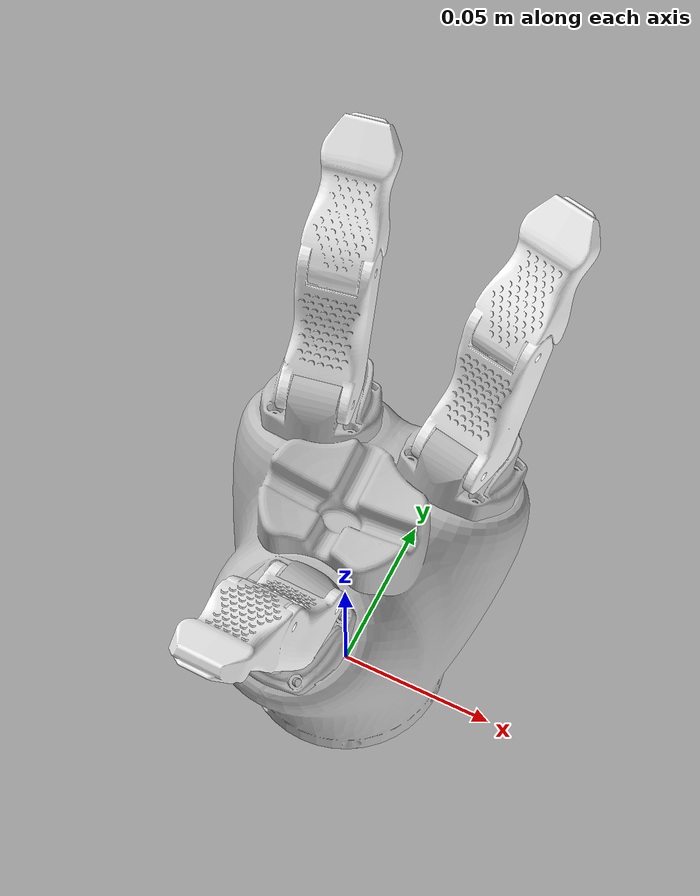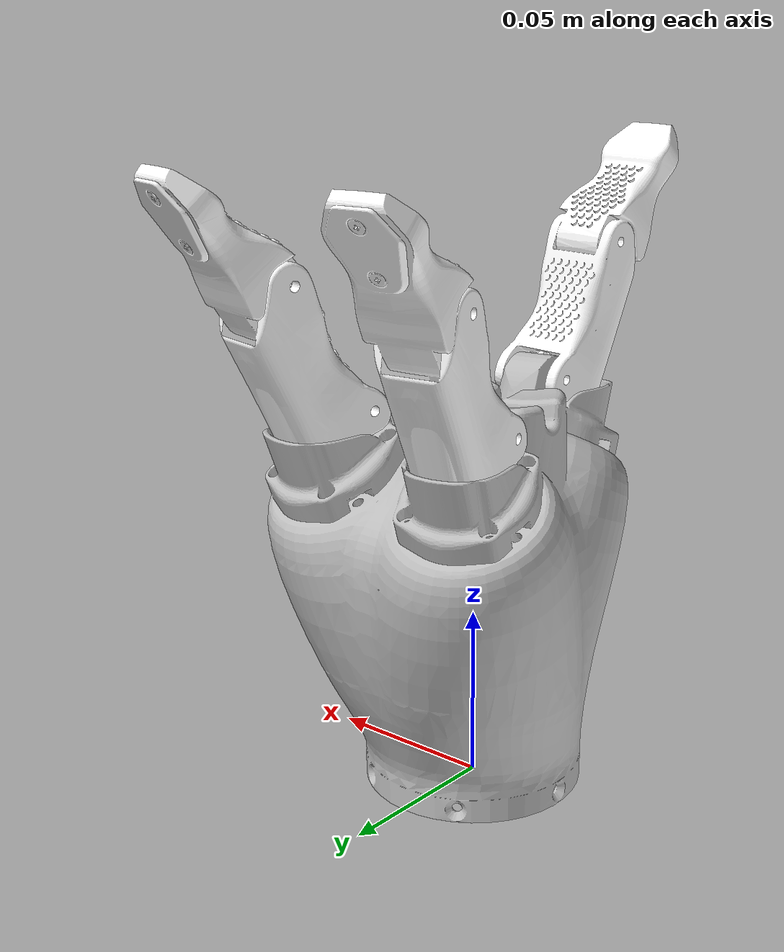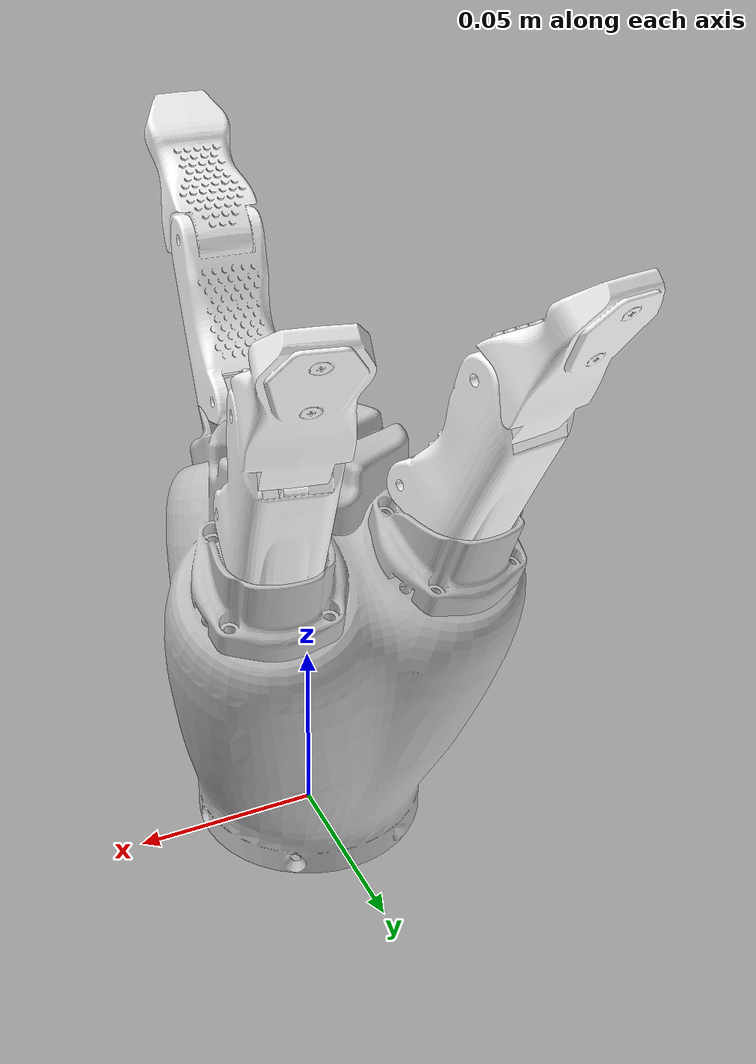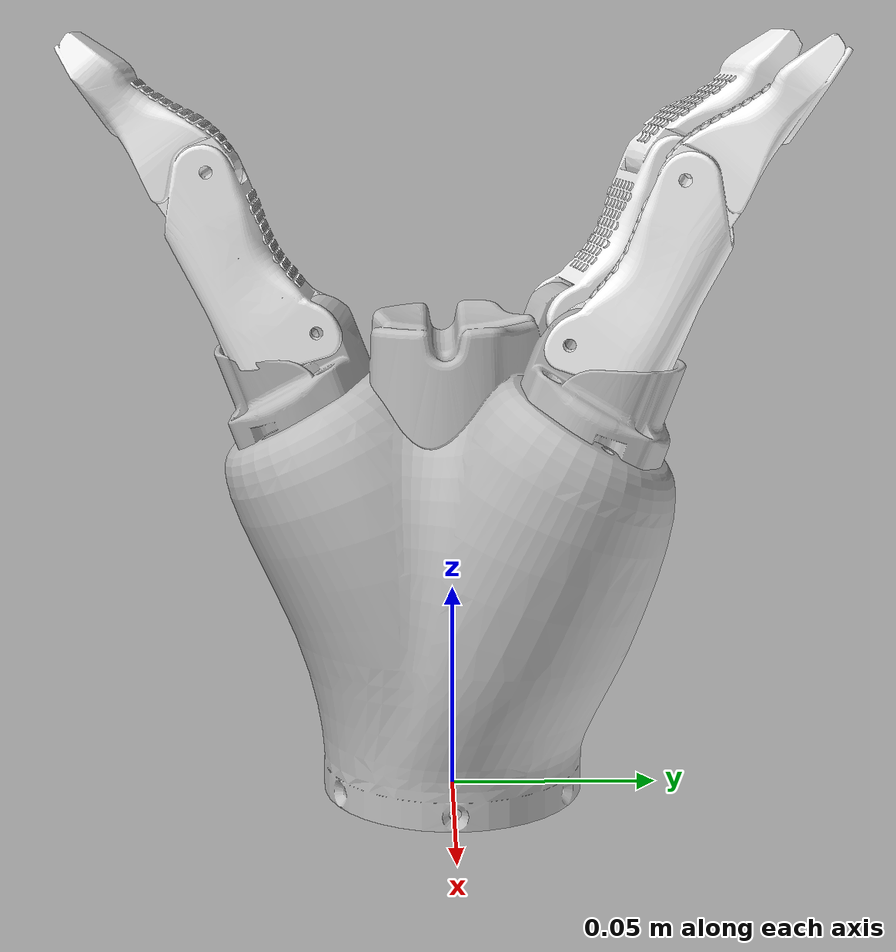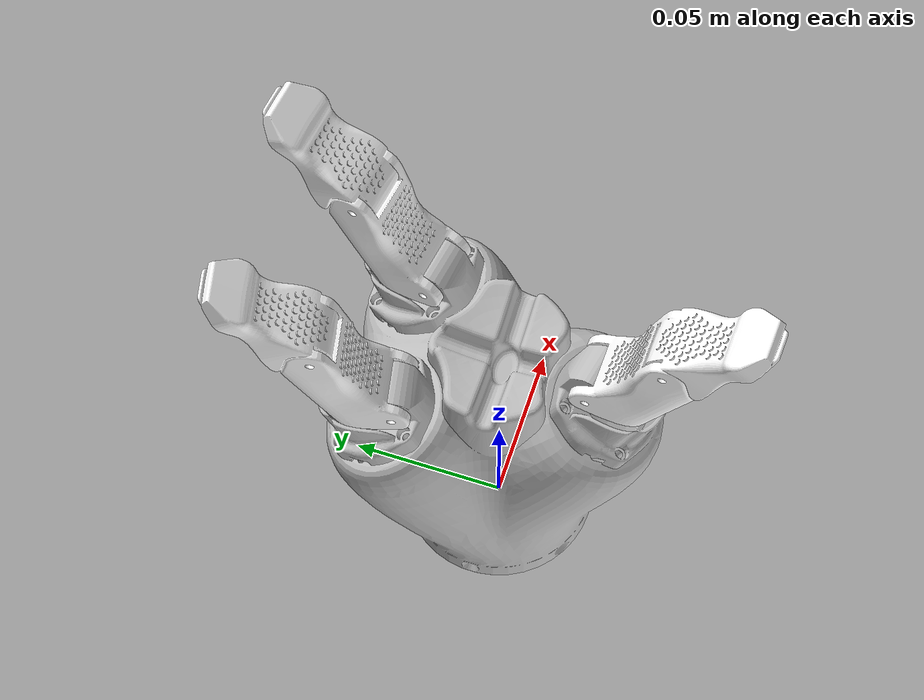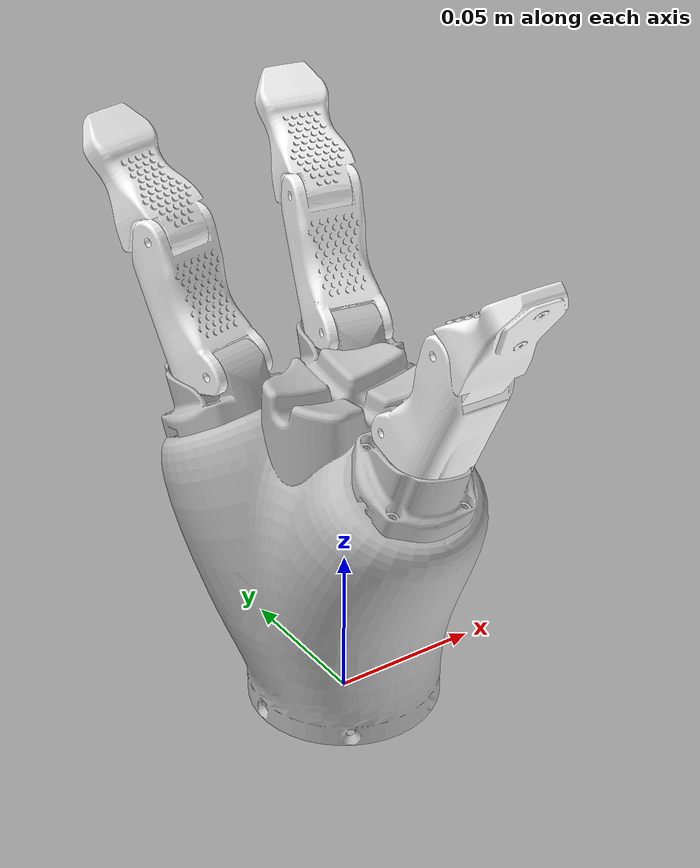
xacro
<?xml version="1.0"?>
<robot name="kinova_kg3" xmlns:xacro="http://ros.org/wiki/xacro">
	<!--
	   Little helper macro to define the inertia matrix needed
	   for links.
	   -->
	<!-- width is along x axis
	     length is along y axis
	     height is along z axis
	-->
	<macro name="cuboid_inertia_def" params="width height length mass">
	  <inertia ixx="${mass * (height * height + length * length) / 12}"
	           iyy="${mass * (width * width + height * height) / 12}"
	           izz="${mass * (width * width + length * length) / 12}"
	           ixy="0" iyz="0" ixz="0"/>
	</macro>

	<!-- length is along the y-axis! -->
	<macro name="cylinder_inertia_def" params="radius length mass">
	  <inertia ixx="${mass * (3 * radius * radius + length * length) / 12}"
	           iyy="${mass * radius* radius / 2}"
	           izz="${mass * (3 * radius * radius + length * length) / 12}"
	           ixy="0" iyz="0" ixz="0"/>
	</macro>

	<property name="PKG" value=""/>
	<property name="M_PI" value="3.14159265258979"/>
	<property name="MESHLAB_SCALE" value="10.0"/>
	<link name="jaco_link_hand">
		<inertial>
			<origin xyz="${-0.002375/MESHLAB_SCALE} ${0.041767/MESHLAB_SCALE} ${0.758896/MESHLAB_SCALE}" rpy="0 0 0" />
			<mass value="0.0"/>
		  <inertia
			  ixx="${0.021528/MESHLAB_SCALE/MESHLAB_SCALE}"
			  iyy="${0.018751/MESHLAB_SCALE/MESHLAB_SCALE}"
			  izz="${0.015785/MESHLAB_SCALE/MESHLAB_SCALE}"
			  ixy="${0.000001/MESHLAB_SCALE/MESHLAB_SCALE}"
			  ixz="${-0.000006/MESHLAB_SCALE/MESHLAB_SCALE}"
			  iyz="${-0.000143/MESHLAB_SCALE/MESHLAB_SCALE}"
			  />
		</inertial>
		<visual>
		  <origin xyz="0 0 0" rpy="0 0 0" />
		  <geometry>
			  <mesh filename="${PKG}meshes/jaco_link_hand.STL" />
		  </geometry>
		  <material name="">
			<color rgba="0.752941176470588 0.752941176470588 0.752941176470588 1" />
		  </material>
		</visual>
		<collision>
		  <origin xyz="0 0 0" rpy="0 0 0" />
		  <geometry>
			  <mesh filename="${PKG}meshes/jaco_link_hand_collision.STL" />
		  </geometry>
		</collision>
	</link>

	<xacro:include filename="kinova_kg3_finger.xacro" />
	<xacro:kinova_kg3_finger index="1" origin_xx="0.00228309324472738" origin_yy="-0.0312566848705875" origin_zz="0.114430431187145"
      origin_r="1.57925286601306" origin_p="-0.980344825914001" origin_y="-1.60227019088307" />

	<xacro:kinova_kg3_finger index="2" origin_xx="0.0216844849669984" origin_yy="0.0270991446492316" origin_zz="0.114669378846608"
      origin_r="1.5624840408079" origin_p="-0.979964587178996" origin_y="1.39416913026774" />

	<xacro:kinova_kg3_finger index="3" origin_xx="-0.0228265816404847" origin_yy="0.0270473381757137" origin_zz="0.114459755557531"
      origin_r="1.56250901307788" origin_p="-0.978234931608093" origin_y="1.76352902216187" />

</robot>

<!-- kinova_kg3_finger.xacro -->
<robot name="kinova_kg3_finger" xmlns:xacro="http://ros.org/wiki/xacro">
	<property name="PKG" value=""/>
	<property name="M_PI" value="3.14159265358979"/>
	<property name="MESHLAB_SCALE" value="10.0"/>
	<xacro:macro name="kinova_kg3_finger" params="index origin_xx origin_yy origin_zz origin_r origin_p origin_y">
		<joint name="jaco_joint_finger_${index}" type="revolute">
			<origin xyz="${origin_xx} ${origin_yy} ${origin_zz}" rpy="${origin_r} ${origin_p} ${origin_y}" />
			<parent link="jaco_link_hand" />
			<child link="jaco_link_finger_${index}" />
			<limit lower="0" upper="${50*M_PI/180}" effort="30" velocity="5"/>
			<axis xyz="0 0 1" />
	    </joint>

    	<link name="jaco_link_finger_${index}">
			<inertial>
			  <origin
				  xyz="${0.426520/MESHLAB_SCALE} ${-0.061351/MESHLAB_SCALE} ${0.000022/MESHLAB_SCALE}"
				rpy="0 0 0" />
			  <mass value="${0.021306/MESHLAB_SCALE}" />
		      <inertia
				  ixx="${0.000172/MESHLAB_SCALE/MESHLAB_SCALE}"
				  iyy="${0.001210/MESHLAB_SCALE/MESHLAB_SCALE}"
				  izz="${0.001179/MESHLAB_SCALE/MESHLAB_SCALE}"
				  ixy="${0.000012/MESHLAB_SCALE/MESHLAB_SCALE}"
				  ixz="${0.0/MESHLAB_SCALE/MESHLAB_SCALE}"
				  iyz="${0.0/MESHLAB_SCALE/MESHLAB_SCALE}"
			  />
					</inertial>
			<visual>
			  <origin xyz="0 0 0" rpy="0 0 0" />
			  <geometry>
				  <mesh filename="${PKG}meshes/jaco_link_finger_2.STL" />
			  </geometry>
			  <material name="kinova_color">
				<color rgba="1 1 1 1" />
			  </material>
			</visual>
			<collision>
			  <origin xyz="0 0 0" rpy="0 0 0" />
			  <geometry>
				  <mesh filename="${PKG}meshes/jaco_link_finger_2_collision.STL" />
			  </geometry>
			</collision>
	    </link>
	</xacro:macro>
</robot>
